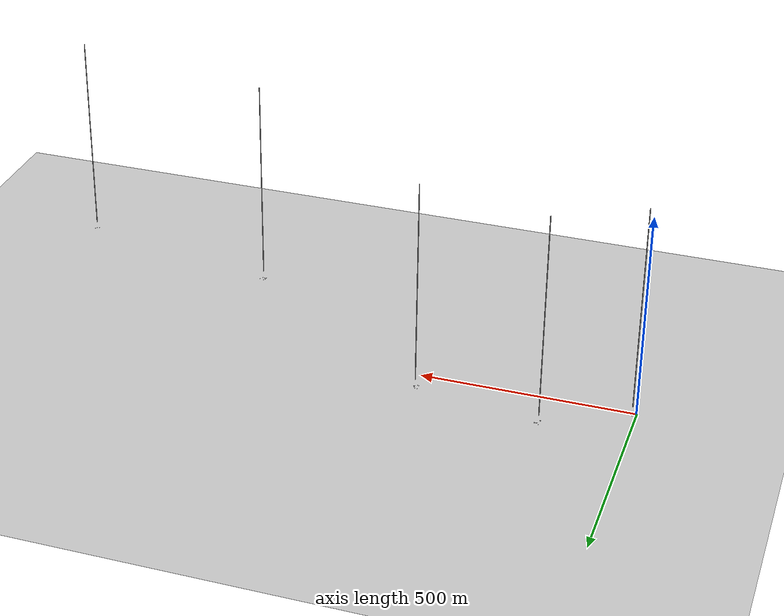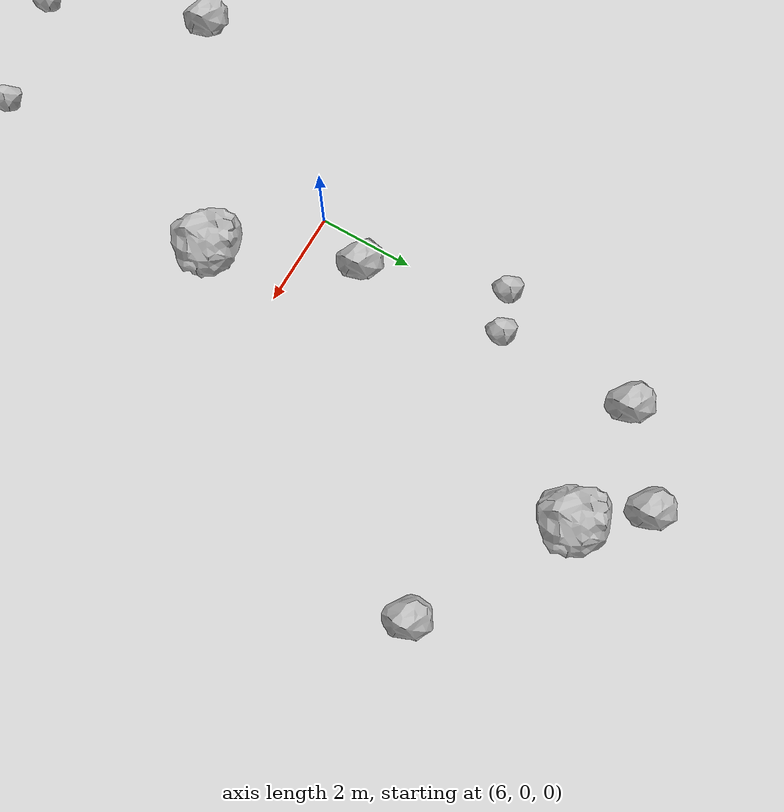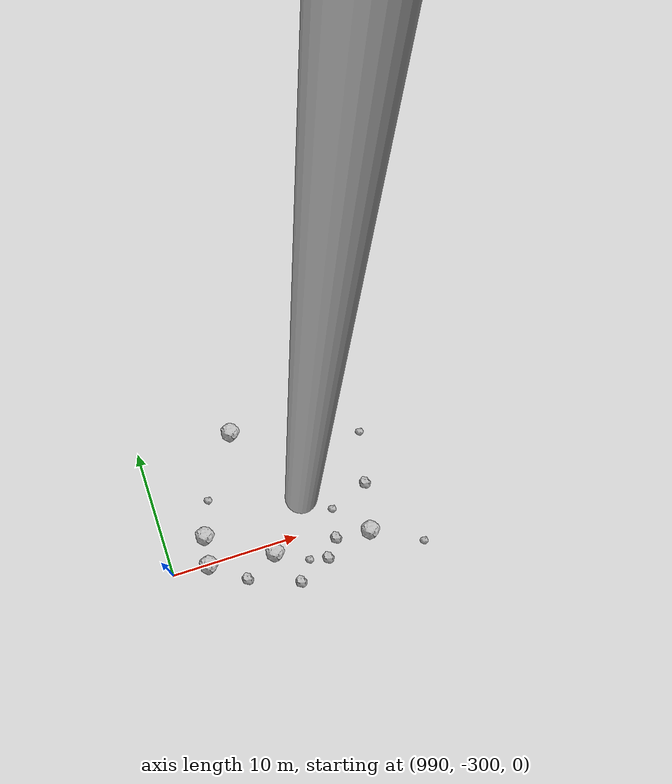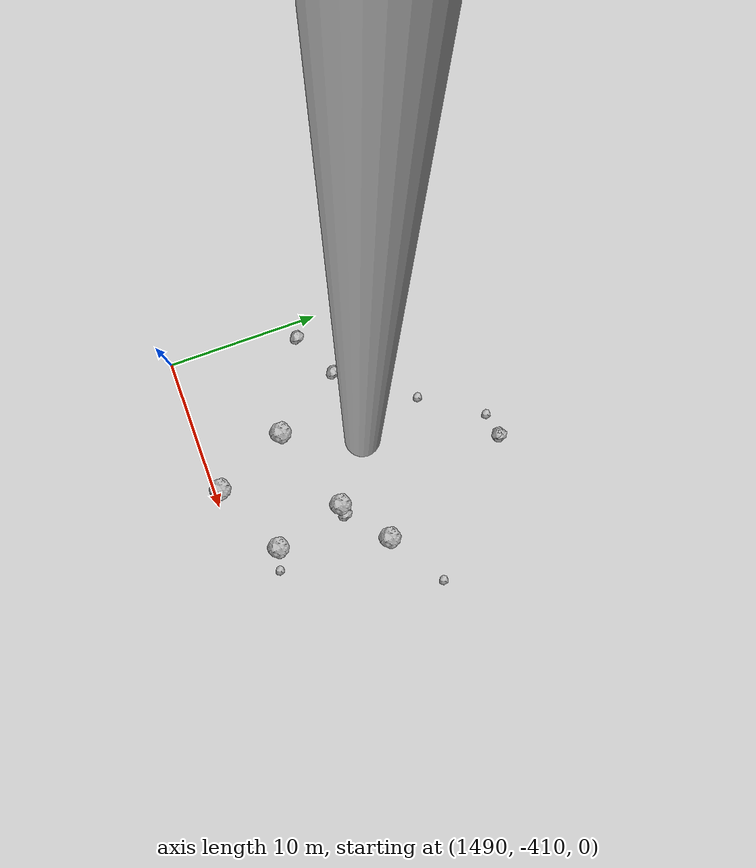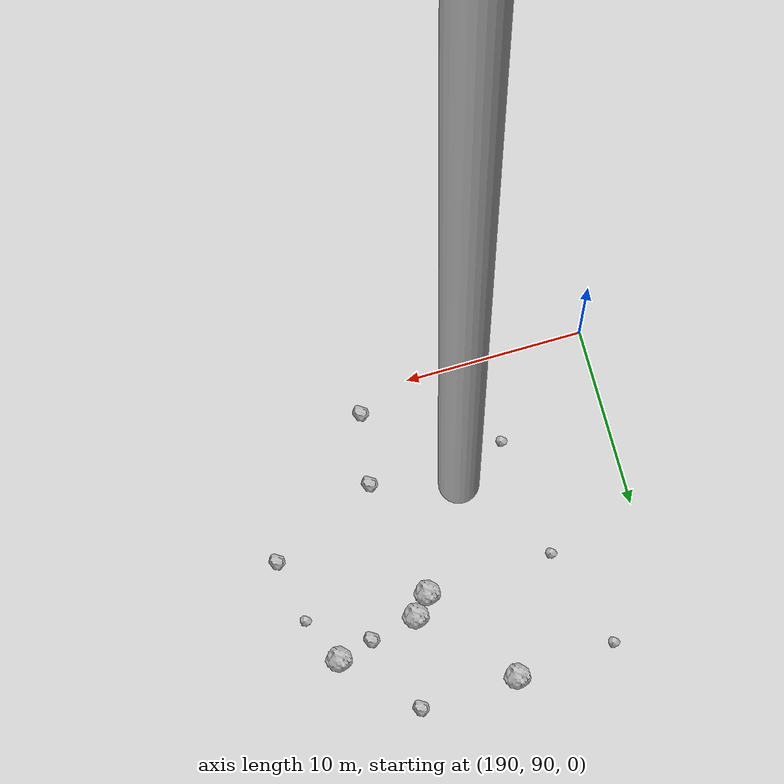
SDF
<?xml version="1.0" ?>
<sdf version="1.6">
  <world name="default">

    <include>
      <uri>model://custom_ground</uri>
    </include>

    <include>
      <uri>model://sun</uri>
    </include>

    <spherical_coordinates>
      <surface_model>EARTH_WGS84</surface_model>
      <latitude_deg>38.161479</latitude_deg>
      <longitude_deg>-122.454630</longitude_deg>
      <elevation>488.0</elevation>
      <heading_deg>90</heading_deg>
    </spherical_coordinates>

    <model name="rock1_0_0">
      <include>
        <uri>model://rock1</uri>
        <pose>11.597988784558261 -9.54052728316313 0.5 0 0 0</pose>
      </include>
    </model>
    <model name="rock1_0_1">
      <include>
        <uri>model://rock1</uri>
        <pose>9.148044631093995 7.362404877525691 0.5 0 0 0</pose>
      </include>
    </model>
    <model name="rock1_0_2">
      <include>
        <uri>model://rock1</uri>
        <pose>17.720309800147803 -5.726074465069708 0.5 0 0 0</pose>
      </include>
    </model>
    <model name="rock1_0_3">
      <include>
        <uri>model://rock1</uri>
        <pose>7.808100021957289 -1.6698802282582825 0.5 0 0 0</pose>
      </include>
    </model>
    <model name="rock1_0_4">
      <include>
        <uri>model://rock1</uri>
        <pose>17.217890964304928 -5.038430412140851 0.5 0 0 0</pose>
      </include>
    </model>
    <model name="rock2_0_0">
      <include>
        <uri>model://rock2</uri>
        <pose>12.251473331511304 5.602898056585698 0.3 0 0 0</pose>
      </include>
    </model>
    <model name="rock2_0_1">
      <include>
        <uri>model://rock2</uri>
        <pose>6.472914805664223 1.1695442930209676 0.3 0 0 0</pose>
      </include>
    </model>
    <model name="rock2_0_2">
      <include>
        <uri>model://rock2</uri>
        <pose>8.115962516487972 8.586938863602338 0.3 0 0 0</pose>
      </include>
    </model>
    <model name="rock2_0_3">
      <include>
        <uri>model://rock2</uri>
        <pose>6.415828840035402 7.278341315343976 0.3 0 0 0</pose>
      </include>
    </model>
    <model name="rock2_0_4">
      <include>
        <uri>model://rock2</uri>
        <pose>3.287177923022644 -4.545871473284571 0.3 0 0 0</pose>
      </include>
    </model>
    <model name="rock3_0_0">
      <include>
        <uri>model://rock3</uri>
        <pose>6.982671782226064 -7.230374055301134 0.2 0 0 0</pose>
      </include>
    </model>
    <model name="rock3_0_1">
      <include>
        <uri>model://rock3</uri>
        <pose>5.469298155422305 3.9999179298436633 0.2 0 0 0</pose>
      </include>
    </model>
    <model name="rock3_0_2">
      <include>
        <uri>model://rock3</uri>
        <pose>6.33022287952935 4.321897262050758 0.2 0 0 0</pose>
      </include>
    </model>
    <model name="rock3_0_3">
      <include>
        <uri>model://rock3</uri>
        <pose>4.551494017960862 -7.871009155478717 0.2 0 0 0</pose>
      </include>
    </model>
    <model name="rock3_0_4">
      <include>
        <uri>model://rock3</uri>
        <pose>14.183403087025956 -8.256380584615005 0.2 0 0 0</pose>
      </include>
    </model>
    <model name="rock1_1_0">
      <include>
        <uri>model://rock1</uri>
        <pose>198.73035828582093 107.59538018627651 0.5 0 0 0</pose>
      </include>
    </model>
    <model name="rock1_1_1">
      <include>
        <uri>model://rock1</uri>
        <pose>202.19870373320379 101.84329424602652 0.5 0 0 0</pose>
      </include>
    </model>
    <model name="rock1_1_2">
      <include>
        <uri>model://rock1</uri>
        <pose>197.71451083510294 91.35863673338565 0.5 0 0 0</pose>
      </include>
    </model>
    <model name="rock1_1_3">
      <include>
        <uri>model://rock1</uri>
        <pose>203.14369561789243 102.89751599410627 0.5 0 0 0</pose>
      </include>
    </model>
    <model name="rock1_1_4">
      <include>
        <uri>model://rock1</uri>
        <pose>207.8181459026187 104.05092150679273 0.5 0 0 0</pose>
      </include>
    </model>
    <model name="rock2_1_0">
      <include>
        <uri>model://rock2</uri>
        <pose>205.79762687564212 103.47282489367689 0.3 0 0 0</pose>
      </include>
    </model>
    <model name="rock2_1_1">
      <include>
        <uri>model://rock2</uri>
        <pose>202.98777113451266 91.13576323748333 0.3 0 0 0</pose>
      </include>
    </model>
    <model name="rock2_1_2">
      <include>
        <uri>model://rock2</uri>
        <pose>203.58221747941192 95.10546187528463 0.3 0 0 0</pose>
      </include>
    </model>
    <model name="rock2_1_3">
      <include>
        <uri>model://rock2</uri>
        <pose>204.21877114063412 107.82174366321021 0.3 0 0 0</pose>
      </include>
    </model>
    <model name="rock2_1_4">
      <include>
        <uri>model://rock2</uri>
        <pose>209.63791470379792 97.91340449931903 0.3 0 0 0</pose>
      </include>
    </model>
    <model name="rock3_1_0">
      <include>
        <uri>model://rock3</uri>
        <pose>193.08649875292986 107.1695230620253 0.2 0 0 0</pose>
      </include>
    </model>
    <model name="rock3_1_1">
      <include>
        <uri>model://rock3</uri>
        <pose>195.01105942517773 101.50430550159753 0.2 0 0 0</pose>
      </include>
    </model>
    <model name="rock3_1_2">
      <include>
        <uri>model://rock3</uri>
        <pose>208.9769454421046 101.45663355228662 0.2 0 0 0</pose>
      </include>
    </model>
    <model name="rock3_1_3">
      <include>
        <uri>model://rock3</uri>
        <pose>195.89567647163565 94.72170241337228 0.2 0 0 0</pose>
      </include>
    </model>
    <model name="rock3_1_4">
      <include>
        <uri>model://rock3</uri>
        <pose>197.00416260183016 92.43384798319148 0.2 0 0 0</pose>
      </include>
    </model>
    <model name="rock1_2_0">
      <include>
        <uri>model://rock1</uri>
        <pose>502.8449993553867 47.17566101081273 0.5 0 0 0</pose>
      </include>
    </model>
    <model name="rock1_2_1">
      <include>
        <uri>model://rock1</uri>
        <pose>503.9154754169082 47.21257967794824 0.5 0 0 0</pose>
      </include>
    </model>
    <model name="rock1_2_2">
      <include>
        <uri>model://rock1</uri>
        <pose>492.84932869672036 55.904325870779424 0.5 0 0 0</pose>
      </include>
    </model>
    <model name="rock1_2_3">
      <include>
        <uri>model://rock1</uri>
        <pose>492.95455196299105 43.26075659165781 0.5 0 0 0</pose>
      </include>
    </model>
    <model name="rock1_2_4">
      <include>
        <uri>model://rock1</uri>
        <pose>501.0332547405983 51.73145403213249 0.5 0 0 0</pose>
      </include>
    </model>
    <model name="rock2_2_0">
      <include>
        <uri>model://rock2</uri>
        <pose>501.8914603535818 46.178305853984064 0.3 0 0 0</pose>
      </include>
    </model>
    <model name="rock2_2_1">
      <include>
        <uri>model://rock2</uri>
        <pose>499.0541013316136 55.49203889023245 0.3 0 0 0</pose>
      </include>
    </model>
    <model name="rock2_2_2">
      <include>
        <uri>model://rock2</uri>
        <pose>496.6875585168407 41.33804782852764 0.3 0 0 0</pose>
      </include>
    </model>
    <model name="rock2_2_3">
      <include>
        <uri>model://rock2</uri>
        <pose>505.06227352352084 48.01696001139446 0.3 0 0 0</pose>
      </include>
    </model>
    <model name="rock2_2_4">
      <include>
        <uri>model://rock2</uri>
        <pose>498.92007985955706 58.855227407089245 0.3 0 0 0</pose>
      </include>
    </model>
    <model name="rock3_2_0">
      <include>
        <uri>model://rock3</uri>
        <pose>503.4210056718523 44.03428221896938 0.2 0 0 0</pose>
      </include>
    </model>
    <model name="rock3_2_1">
      <include>
        <uri>model://rock3</uri>
        <pose>508.0325798418316 49.13970382562939 0.2 0 0 0</pose>
      </include>
    </model>
    <model name="rock3_2_2">
      <include>
        <uri>model://rock3</uri>
        <pose>500.3097718240928 56.807533507095044 0.2 0 0 0</pose>
      </include>
    </model>
    <model name="rock3_2_3">
      <include>
        <uri>model://rock3</uri>
        <pose>495.630681495407 56.36947232470324 0.2 0 0 0</pose>
      </include>
    </model>
    <model name="rock3_2_4">
      <include>
        <uri>model://rock3</uri>
        <pose>507.3543096015603 52.458468725041065 0.2 0 0 0</pose>
      </include>
    </model>
    <model name="rock1_3_0">
      <include>
        <uri>model://rock1</uri>
        <pose>997.5273380478419 -290.5376488913196 0.5 0 0 0</pose>
      </include>
    </model>
    <model name="rock1_3_1">
      <include>
        <uri>model://rock1</uri>
        <pose>998.0545091896836 -300.6940108255307 0.5 0 0 0</pose>
      </include>
    </model>
    <model name="rock1_3_2">
      <include>
        <uri>model://rock1</uri>
        <pose>1005.6679188408475 -301.2524969662483 0.5 0 0 0</pose>
      </include>
    </model>
    <model name="rock1_3_3">
      <include>
        <uri>model://rock1</uri>
        <pose>992.8676210839898 -300.0712129279861 0.5 0 0 0</pose>
      </include>
    </model>
    <model name="rock1_3_4">
      <include>
        <uri>model://rock1</uri>
        <pose>993.2234794108804 -297.826462259494 0.5 0 0 0</pose>
      </include>
    </model>
    <model name="rock2_3_0">
      <include>
        <uri>model://rock2</uri>
        <pose>995.4112704197709 -301.9925444668578 0.3 0 0 0</pose>
      </include>
    </model>
    <model name="rock2_3_1">
      <include>
        <uri>model://rock2</uri>
        <pose>1002.9228926726246 -301.0128215167744 0.3 0 0 0</pose>
      </include>
    </model>
    <model name="rock2_3_2">
      <include>
        <uri>model://rock2</uri>
        <pose>999.3000030176021 -303.4381233551022 0.3 0 0 0</pose>
      </include>
    </model>
    <model name="rock2_3_3">
      <include>
        <uri>model://rock2</uri>
        <pose>1006.4449325650359 -297.5653475774994 0.3 0 0 0</pose>
      </include>
    </model>
    <model name="rock2_3_4">
      <include>
        <uri>model://rock2</uri>
        <pose>1001.8657505273566 -302.3058072726355 0.3 0 0 0</pose>
      </include>
    </model>
    <model name="rock3_3_0">
      <include>
        <uri>model://rock3</uri>
        <pose>994.2359210731636 -295.20618385220644 0.2 0 0 0</pose>
      </include>
    </model>
    <model name="rock3_3_1">
      <include>
        <uri>model://rock3</uri>
        <pose>1009.4027209947142 -303.30609208239485 0.2 0 0 0</pose>
      </include>
    </model>
    <model name="rock3_3_2">
      <include>
        <uri>model://rock3</uri>
        <pose>1000.4304134767724 -302.0350257845191 0.2 0 0 0</pose>
      </include>
    </model>
    <model name="rock3_3_3">
      <include>
        <uri>model://rock3</uri>
        <pose>1007.3247906769762 -293.5471227934899 0.2 0 0 0</pose>
      </include>
    </model>
    <model name="rock3_3_4">
      <include>
        <uri>model://rock3</uri>
        <pose>1003.3329080023914 -298.78126700938196 0.2 0 0 0</pose>
      </include>
    </model>
    <model name="rock1_4_0">
      <include>
        <uri>model://rock1</uri>
        <pose>1505.6388379769523 -399.94561112342353 0.5 0 0 0</pose>
      </include>
    </model>
    <model name="rock1_4_1">
      <include>
        <uri>model://rock1</uri>
        <pose>1496.7079969379156 -404.56501223218646 0.5 0 0 0</pose>
      </include>
    </model>
    <model name="rock1_4_2">
      <include>
        <uri>model://rock1</uri>
        <pose>1502.5079828685266 -402.33707501116936 0.5 0 0 0</pose>
      </include>
    </model>
    <model name="rock1_4_3">
      <include>
        <uri>model://rock1</uri>
        <pose>1498.9674016126048 -409.54967514707005 0.5 0 0 0</pose>
      </include>
    </model>
    <model name="rock1_4_4">
      <include>
        <uri>model://rock1</uri>
        <pose>1503.8770200039944 -407.1469272186165 0.5 0 0 0</pose>
      </include>
    </model>
    <model name="rock2_4_0">
      <include>
        <uri>model://rock2</uri>
        <pose>1490.9756334629953 -401.4826036506899 0.3 0 0 0</pose>
      </include>
    </model>
    <model name="rock2_4_1">
      <include>
        <uri>model://rock2</uri>
        <pose>1493.966835752881 -399.9486442568106 0.3 0 0 0</pose>
      </include>
    </model>
    <model name="rock2_4_2">
      <include>
        <uri>model://rock2</uri>
        <pose>1503.180533987517 -402.24209410196954 0.3 0 0 0</pose>
      </include>
    </model>
    <model name="rock2_4_3">
      <include>
        <uri>model://rock2</uri>
        <pose>1501.540346958529 -390.8088748818256 0.3 0 0 0</pose>
      </include>
    </model>
    <model name="rock2_4_4">
      <include>
        <uri>model://rock2</uri>
        <pose>1501.4272272056983 -390.8760011416671 0.3 0 0 0</pose>
      </include>
    </model>
    <model name="rock3_4_0">
      <include>
        <uri>model://rock3</uri>
        <pose>1497.362608825121 -395.20324147323305 0.2 0 0 0</pose>
      </include>
    </model>
    <model name="rock3_4_1">
      <include>
        <uri>model://rock3</uri>
        <pose>1505.3068319726995 -407.5602925042874 0.2 0 0 0</pose>
      </include>
    </model>
    <model name="rock3_4_2">
      <include>
        <uri>model://rock3</uri>
        <pose>1509.414217514261 -397.5138119028682 0.2 0 0 0</pose>
      </include>
    </model>
    <model name="rock3_4_3">
      <include>
        <uri>model://rock3</uri>
        <pose>1505.557346134151 -400.29358548821006 0.2 0 0 0</pose>
      </include>
    </model>
    <model name="rock3_4_4">
      <include>
        <uri>model://rock3</uri>
        <pose>1499.9127082228292 -391.2485708403858 0.2 0 0 0</pose>
      </include>
    </model>

    <model name="cylinder_1">
      <static>true</static>
      <link name="link">
        <visual name="visual">
          <geometry>
            <cylinder>
              <radius>1</radius>
              <length>500</length>
            </cylinder>
          </geometry>
        </visual>
      </link>
      <pose>10 0 270 0 0 0</pose>
    </model>

    <model name="cylinder_2">
      <static>true</static>
      <link name="link">
        <visual name="visual">
          <geometry>
            <cylinder>
              <radius>1</radius>
              <length>500</length>
            </cylinder>
          </geometry>
        </visual>
      </link>
      <pose>200 100 270 0 0 0</pose>
    </model>

    <model name="cylinder_3">
      <static>true</static>
      <link name="link">
        <visual name="visual">
          <geometry>
            <cylinder>
              <radius>1</radius>
              <length>500</length>
            </cylinder>
          </geometry>
        </visual>
      </link>
      <pose>500 50 270 0 0 0</pose>
    </model>

    <model name="cylinder_4">
      <static>true</static>
      <link name="link">
        <visual name="visual">
          <geometry>
            <cylinder>
              <radius>1</radius>
              <length>500</length>
            </cylinder>
          </geometry>
        </visual>
      </link>
      <pose>1000 -300 270 0 0 0</pose>
    </model>

    <model name="cylinder_5">
      <static>true</static>
      <link name="link">
        <visual name="visual">
          <geometry>
            <cylinder>
              <radius>1</radius>
              <length>500</length>
            </cylinder>
          </geometry>
        </visual>
      </link>
      <pose>1500 -400 270 0 0 0</pose>
    </model>

  </world>
</sdf>

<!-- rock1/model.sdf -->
<sdf version="1.6">
  <model name="rock1">
    <static>true</static> <!-- Set to true if the model should not move -->
    <pose>0 0 0 0 0 0</pose>

    <!--z offset is 0.5 for full scale-->

    <link name="link">
      <collision name="rock1_collision">
        <geometry>
          <mesh>
            <uri>model://meshes/rock1.dae</uri>
          </mesh>
        </geometry>
      </collision>
      <visual name="rock1_visual">
        <geometry>
          <mesh>
            <uri>model://meshes/rock1.dae</uri>
          </mesh>
        </geometry>
        <material>
          <script>
            <uri>model://materials/scripts/sand_pebbles.material</uri>
            <name>custom_ground/Image</name>
          </script>
        </material>
      </visual>
    </link>
  </model>
</sdf>

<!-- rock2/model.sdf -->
<sdf version="1.6">
  <model name="rock2">
    <static>true</static> <!-- Set to true if the model should not move -->
    <pose>0 0 0 0 0 0</pose>

    <!--z offset is 0.3 for full scale-->

    <link name="link">
      <collision name="rock2_collision">
        <geometry>
          <mesh>
            <uri>model://meshes/rock2.dae</uri>
          </mesh>
        </geometry>
      </collision>
      <visual name="rock2_visual">
        <geometry>
          <mesh>
            <uri>model://meshes/rock2.dae</uri>
          </mesh>
        </geometry>
        <material>
          <script>
            <uri>model://materials/scripts/sand_pebbles.material</uri>
            <name>custom_ground/Image</name>
          </script>
        </material>
      </visual>
    </link>
  </model>
</sdf>

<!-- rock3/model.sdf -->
<sdf version="1.6">
  <model name="rock3">
    <static>true</static> <!-- Set to true if the model should not move -->
    <pose>0 0 0 0 0 0</pose>

    <!--z offset is 0.2 for full scale-->

    <link name="link">
      <collision name="rock3_collision">
        <geometry>
          <mesh>
            <uri>model://meshes/rock3.dae</uri>
          </mesh>
        </geometry>
      </collision>
      <visual name="rock3_visual">
        <geometry>
          <mesh>
            <uri>model://meshes/rock3.dae</uri>
          </mesh>
        </geometry>
        <material>
          <script>
            <uri>model://materials/scripts/sand_pebbles.material</uri>
            <name>custom_ground/Image</name>
          </script>
        </material>
      </visual>
    </link>
  </model>
</sdf>

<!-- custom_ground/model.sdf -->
<sdf version="1.6">
  <model name="custom_ground">
    <static>true</static> <!-- Ground is static and immovable -->
    <link name="ground_link">
      <pose>240 0 0 0 0 0</pose> <!-- Position and orientation relative to the world -->
      <!-- Visual Representation -->
      <visual name="ground_visual">
        <geometry>
          <plane>
            <normal>0 0 1</normal> <!-- Upward facing plane -->
            <size>500 500</size> <!-- Size of the plane -->
          </plane>
        </geometry>
        <material>
          <script>
            <uri>model://materials/scripts/sand_pebbles.material</uri>
            <name>custom_ground/Image</name>
          </script>
        </material>
      </visual>

      <!-- Collision Representation -->
      <collision name="ground_collision">
        <geometry>
          <plane>
            <normal>0 0 1</normal>
            <size>100 100</size>
          </plane>
        </geometry>
      </collision>

    </link>
  </model>
</sdf>
